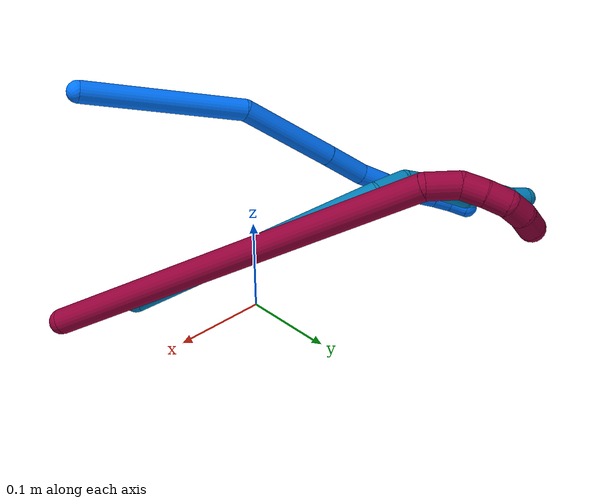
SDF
<sdf version="1.7">
 <world name="default">
  <model name="8">
   <static>0</static>
   <link name="8">
    <collision name="collision-cylinder-e_1_1_4">
     <pose>-0.034302 0.022058 0.188051 -0.116762 -0.179222 0.010503</pose>
     <geometry><cylinder><radius>0.0125</radius><length>0.384845</length></cylinder></geometry>
     <surface>
      <friction><ode><mu>1.16</mu><mu2>1.16</mu2><slip1>0</slip1><slip2>0</slip2></ode></friction>
      <contact><ode><kp>1e+06</kp><kd>1</kd><max_vel>0</max_vel><min_depth>0.001</min_depth></ode></contact>
     </surface>
    </collision>
    <visual name="visual-cylinder-e_1_1_4">
     <pose>-0.034302 0.022058 0.188051 -0.116762 -0.179222 0.010503</pose>
     <geometry><cylinder><radius>0.0125</radius><length>0.384845</length></cylinder></geometry>
     <material><ambient>0.584314 0 0.227451 1</ambient></material>
    </visual>
    <collision name="collision-cylinder-e_2_4_5">
     <pose>-0.07004 0.038054 0.390578 0.396533 -0.091213 -0.018338</pose>
     <geometry><cylinder><radius>0.0125</radius><length>0.031518</length></cylinder></geometry>
     <surface>
      <friction><ode><mu>1.16</mu><mu2>1.16</mu2><slip1>0</slip1><slip2>0</slip2></ode></friction>
      <contact><ode><kp>1e+06</kp><kd>1</kd><max_vel>0</max_vel><min_depth>0.001</min_depth></ode></contact>
     </surface>
    </collision>
    <visual name="visual-cylinder-e_2_4_5">
     <pose>-0.07004 0.038054 0.390578 0.396533 -0.091213 -0.018338</pose>
     <geometry><cylinder><radius>0.0125</radius><length>0.031518</length></cylinder></geometry>
     <material><ambient>0.584314 0 0.227451 1</ambient></material>
    </visual>
    <collision name="collision-cylinder-e_3_5_6">
     <pose>-0.075758 0.025932 0.413208 0.639236 -0.39895 -0.133619</pose>
     <geometry><cylinder><radius>0.0125</radius><length>0.022051</length></cylinder></geometry>
     <surface>
      <friction><ode><mu>1.16</mu><mu2>1.16</mu2><slip1>0</slip1><slip2>0</slip2></ode></friction>
      <contact><ode><kp>1e+06</kp><kd>1</kd><max_vel>0</max_vel><min_depth>0.001</min_depth></ode></contact>
     </surface>
    </collision>
    <visual name="visual-cylinder-e_3_5_6">
     <pose>-0.075758 0.025932 0.413208 0.639236 -0.39895 -0.133619</pose>
     <geometry><cylinder><radius>0.0125</radius><length>0.022051</length></cylinder></geometry>
     <material><ambient>0.584314 0 0.227451 1</ambient></material>
    </visual>
    <collision name="collision-cylinder-e_4_6_7">
     <pose>-0.083855 0.013063 0.428395 0.76902 -0.371591 -0.151827</pose>
     <geometry><cylinder><radius>0.0125</radius><length>0.021011</length></cylinder></geometry>
     <surface>
      <friction><ode><mu>1.16</mu><mu2>1.16</mu2><slip1>0</slip1><slip2>0</slip2></ode></friction>
      <contact><ode><kp>1e+06</kp><kd>1</kd><max_vel>0</max_vel><min_depth>0.001</min_depth></ode></contact>
     </surface>
    </collision>
    <visual name="visual-cylinder-e_4_6_7">
     <pose>-0.083855 0.013063 0.428395 0.76902 -0.371591 -0.151827</pose>
     <geometry><cylinder><radius>0.0125</radius><length>0.021011</length></cylinder></geometry>
     <material><ambient>0.584314 0 0.227451 1</ambient></material>
    </visual>
    <collision name="collision-cylinder-e_5_7_8">
     <pose>-0.08846 -0.003026 0.439206 1.18441 -0.078718 -0.052973</pose>
     <geometry><cylinder><radius>0.0125</radius><length>0.020103</length></cylinder></geometry>
     <surface>
      <friction><ode><mu>1.16</mu><mu2>1.16</mu2><slip1>0</slip1><slip2>0</slip2></ode></friction>
      <contact><ode><kp>1e+06</kp><kd>1</kd><max_vel>0</max_vel><min_depth>0.001</min_depth></ode></contact>
     </surface>
    </collision>
    <visual name="visual-cylinder-e_5_7_8">
     <pose>-0.08846 -0.003026 0.439206 1.18441 -0.078718 -0.052973</pose>
     <geometry><cylinder><radius>0.0125</radius><length>0.020103</length></cylinder></geometry>
     <material><ambient>0.584314 0 0.227451 1</ambient></material>
    </visual>
    <collision name="collision-cylinder-e_6_8_2">
     <pose>-0.088641 -0.022385 0.444665 1.40527 0.059572 0.050449</pose>
     <geometry><cylinder><radius>0.0125</radius><length>0.020472</length></cylinder></geometry>
     <surface>
      <friction><ode><mu>1.16</mu><mu2>1.16</mu2><slip1>0</slip1><slip2>0</slip2></ode></friction>
      <contact><ode><kp>1e+06</kp><kd>1</kd><max_vel>0</max_vel><min_depth>0.001</min_depth></ode></contact>
     </surface>
    </collision>
    <visual name="visual-cylinder-e_6_8_2">
     <pose>-0.088641 -0.022385 0.444665 1.40527 0.059572 0.050449</pose>
     <geometry><cylinder><radius>0.0125</radius><length>0.020472</length></cylinder></geometry>
     <material><ambient>0.584314 0 0.227451 1</ambient></material>
    </visual>
    <collision name="collision-sphere-2">
     <pose>-0.088032 -0.032463 0.446349 0 -0 0</pose>
     <geometry><sphere><radius>0.0125</radius></sphere></geometry>
     <surface>
      <friction><ode><mu>1.16</mu><mu2>1.16</mu2><slip1>0</slip1><slip2>0</slip2></ode></friction>
      <contact><ode><kp>1e+06</kp><kd>1</kd><max_vel>0</max_vel><min_depth>0.001</min_depth></ode></contact>
     </surface>
    </collision>
    <visual name="visual-sphere-2">
     <pose>-0.088032 -0.032463 0.446349 0 -0 0</pose>
     <geometry><sphere><radius>0.0125</radius></sphere></geometry>
     <material><ambient>0.584314 0 0.227451 1</ambient></material>
    </visual>
    <collision name="collision-sphere-4">
     <pose>-0.068604 0.044115 0.376103 0 -0 0</pose>
     <geometry><sphere><radius>0.0125</radius></sphere></geometry>
     <surface>
      <friction><ode><mu>1.16</mu><mu2>1.16</mu2><slip1>0</slip1><slip2>0</slip2></ode></friction>
      <contact><ode><kp>1e+06</kp><kd>1</kd><max_vel>0</max_vel><min_depth>0.001</min_depth></ode></contact>
     </surface>
    </collision>
    <visual name="visual-sphere-4">
     <pose>-0.068604 0.044115 0.376103 0 -0 0</pose>
     <geometry><sphere><radius>0.0125</radius></sphere></geometry>
     <material><ambient>0.584314 0 0.227451 1</ambient></material>
    </visual>
    <collision name="collision-sphere-1">
     <geometry><sphere><radius>0.0125</radius></sphere></geometry>
     <surface>
      <friction><ode><mu>1.16</mu><mu2>1.16</mu2><slip1>0</slip1><slip2>0</slip2></ode></friction>
      <contact><ode><kp>1e+06</kp><kd>1</kd><max_vel>0</max_vel><min_depth>0.001</min_depth></ode></contact>
     </surface>
    </collision>
    <visual name="visual-sphere-1">
     <geometry><sphere><radius>0.0125</radius></sphere></geometry>
     <material><ambient>0.584314 0 0.227451 1</ambient></material>
    </visual>
    <collision name="collision-sphere-8">
     <pose>-0.089251 -0.012307 0.442982 0 -0 0</pose>
     <geometry><sphere><radius>0.0125</radius></sphere></geometry>
     <surface>
      <friction><ode><mu>1.16</mu><mu2>1.16</mu2><slip1>0</slip1><slip2>0</slip2></ode></friction>
      <contact><ode><kp>1e+06</kp><kd>1</kd><max_vel>0</max_vel><min_depth>0.001</min_depth></ode></contact>
     </surface>
    </collision>
    <visual name="visual-sphere-8">
     <pose>-0.089251 -0.012307 0.442982 0 -0 0</pose>
     <geometry><sphere><radius>0.0125</radius></sphere></geometry>
     <material><ambient>0.584314 0 0.227451 1</ambient></material>
    </visual>
    <collision name="collision-sphere-5">
     <pose>-0.071475 0.031993 0.405054 0 -0 0</pose>
     <geometry><sphere><radius>0.0125</radius></sphere></geometry>
     <surface>
      <friction><ode><mu>1.16</mu><mu2>1.16</mu2><slip1>0</slip1><slip2>0</slip2></ode></friction>
      <contact><ode><kp>1e+06</kp><kd>1</kd><max_vel>0</max_vel><min_depth>0.001</min_depth></ode></contact>
     </surface>
    </collision>
    <visual name="visual-sphere-5">
     <pose>-0.071475 0.031993 0.405054 0 -0 0</pose>
     <geometry><sphere><radius>0.0125</radius></sphere></geometry>
     <material><ambient>0.584314 0 0.227451 1</ambient></material>
    </visual>
    <collision name="collision-sphere-6">
     <pose>-0.080041 0.019871 0.421361 0 -0 0</pose>
     <geometry><sphere><radius>0.0125</radius></sphere></geometry>
     <surface>
      <friction><ode><mu>1.16</mu><mu2>1.16</mu2><slip1>0</slip1><slip2>0</slip2></ode></friction>
      <contact><ode><kp>1e+06</kp><kd>1</kd><max_vel>0</max_vel><min_depth>0.001</min_depth></ode></contact>
     </surface>
    </collision>
    <visual name="visual-sphere-6">
     <pose>-0.080041 0.019871 0.421361 0 -0 0</pose>
     <geometry><sphere><radius>0.0125</radius></sphere></geometry>
     <material><ambient>0.584314 0 0.227451 1</ambient></material>
    </visual>
    <collision name="collision-sphere-7">
     <pose>-0.08767 0.006256 0.435429 0 -0 0</pose>
     <geometry><sphere><radius>0.0125</radius></sphere></geometry>
     <surface>
      <friction><ode><mu>1.16</mu><mu2>1.16</mu2><slip1>0</slip1><slip2>0</slip2></ode></friction>
      <contact><ode><kp>1e+06</kp><kd>1</kd><max_vel>0</max_vel><min_depth>0.001</min_depth></ode></contact>
     </surface>
    </collision>
    <visual name="visual-sphere-7">
     <pose>-0.08767 0.006256 0.435429 0 -0 0</pose>
     <geometry><sphere><radius>0.0125</radius></sphere></geometry>
     <material><ambient>0.584314 0 0.227451 1</ambient></material>
    </visual>
    <inertial>
     <pose>-0.044868 0.020031 0.241452 0 -0 0</pose>
     <mass>0.5</mass>
     <inertia>
      <ixx>0.00474</ixx>
      <ixy>0</ixy>
      <ixz>0</ixz>
      <iyy>0.004786</iyy>
      <iyz>0</iyz>
      <izz>0.000346</izz>
     </inertia>
    </inertial>
   </link>
   <pose>0.204482 -0.050295 0.053863 1.13984 -0.211706 -2.1832</pose>
  </model>
  <model name="9">
   <static>0</static>
   <link name="9">
    <collision name="collision-cylinder-e_1_1_4">
     <pose>-0.082476 0.067957 -0.093915 -2.51521 -0.618381 1.55706</pose>
     <geometry><cylinder><radius>0.0125</radius><length>0.284537</length></cylinder></geometry>
     <surface>
      <friction><ode><mu>1.16</mu><mu2>1.16</mu2><slip1>0</slip1><slip2>0</slip2></ode></friction>
      <contact><ode><kp>1e+06</kp><kd>1</kd><max_vel>0</max_vel><min_depth>0.001</min_depth></ode></contact>
     </surface>
    </collision>
    <visual name="visual-cylinder-e_1_1_4">
     <pose>-0.082476 0.067957 -0.093915 -2.51521 -0.618381 1.55706</pose>
     <geometry><cylinder><radius>0.0125</radius><length>0.284537</length></cylinder></geometry>
     <material><ambient>0 0.490196 0.709804 1</ambient></material>
    </visual>
    <collision name="collision-cylinder-e_2_4_5">
     <pose>-0.175362 0.15066 -0.19681 -2.11775 -0.542622 0.919384</pose>
     <geometry><cylinder><radius>0.0125</radius><length>0.040322</length></cylinder></geometry>
     <surface>
      <friction><ode><mu>1.16</mu><mu2>1.16</mu2><slip1>0</slip1><slip2>0</slip2></ode></friction>
      <contact><ode><kp>1e+06</kp><kd>1</kd><max_vel>0</max_vel><min_depth>0.001</min_depth></ode></contact>
     </surface>
    </collision>
    <visual name="visual-cylinder-e_2_4_5">
     <pose>-0.175362 0.15066 -0.19681 -2.11775 -0.542622 0.919384</pose>
     <geometry><cylinder><radius>0.0125</radius><length>0.040322</length></cylinder></geometry>
     <material><ambient>0 0.490196 0.709804 1</ambient></material>
    </visual>
    <collision name="collision-cylinder-e_3_5_6">
     <pose>-0.194869 0.172221 -0.206771 -1.71383 -0.922828 1.04209</pose>
     <geometry><cylinder><radius>0.0125</radius><length>0.022817</length></cylinder></geometry>
     <surface>
      <friction><ode><mu>1.16</mu><mu2>1.16</mu2><slip1>0</slip1><slip2>0</slip2></ode></friction>
      <contact><ode><kp>1e+06</kp><kd>1</kd><max_vel>0</max_vel><min_depth>0.001</min_depth></ode></contact>
     </surface>
    </collision>
    <visual name="visual-cylinder-e_3_5_6">
     <pose>-0.194869 0.172221 -0.206771 -1.71383 -0.922828 1.04209</pose>
     <geometry><cylinder><radius>0.0125</radius><length>0.022817</length></cylinder></geometry>
     <material><ambient>0 0.490196 0.709804 1</ambient></material>
    </visual>
    <collision name="collision-cylinder-e_4_6_7">
     <pose>-0.229806 0.200117 -0.206163 -1.49556 -0.885121 0.828233</pose>
     <geometry><cylinder><radius>0.0125</radius><length>0.066772</length></cylinder></geometry>
     <surface>
      <friction><ode><mu>1.16</mu><mu2>1.16</mu2><slip1>0</slip1><slip2>0</slip2></ode></friction>
      <contact><ode><kp>1e+06</kp><kd>1</kd><max_vel>0</max_vel><min_depth>0.001</min_depth></ode></contact>
     </surface>
    </collision>
    <visual name="visual-cylinder-e_4_6_7">
     <pose>-0.229806 0.200117 -0.206163 -1.49556 -0.885121 0.828233</pose>
     <geometry><cylinder><radius>0.0125</radius><length>0.066772</length></cylinder></geometry>
     <material><ambient>0 0.490196 0.709804 1</ambient></material>
    </visual>
    <collision name="collision-cylinder-e_5_7_8">
     <pose>-0.262864 0.227183 -0.208376 -2.13668 -0.794214 1.30382</pose>
     <geometry><cylinder><radius>0.0125</radius><length>0.020236</length></cylinder></geometry>
     <surface>
      <friction><ode><mu>1.16</mu><mu2>1.16</mu2><slip1>0</slip1><slip2>0</slip2></ode></friction>
      <contact><ode><kp>1e+06</kp><kd>1</kd><max_vel>0</max_vel><min_depth>0.001</min_depth></ode></contact>
     </surface>
    </collision>
    <visual name="visual-cylinder-e_5_7_8">
     <pose>-0.262864 0.227183 -0.208376 -2.13668 -0.794214 1.30382</pose>
     <geometry><cylinder><radius>0.0125</radius><length>0.020236</length></cylinder></geometry>
     <material><ambient>0 0.490196 0.709804 1</ambient></material>
    </visual>
    <collision name="collision-cylinder-e_6_8_9">
     <pose>-0.277889 0.241259 -0.214543 -1.85511 -0.747169 0.96366</pose>
     <geometry><cylinder><radius>0.0125</radius><length>0.022979</length></cylinder></geometry>
     <surface>
      <friction><ode><mu>1.16</mu><mu2>1.16</mu2><slip1>0</slip1><slip2>0</slip2></ode></friction>
      <contact><ode><kp>1e+06</kp><kd>1</kd><max_vel>0</max_vel><min_depth>0.001</min_depth></ode></contact>
     </surface>
    </collision>
    <visual name="visual-cylinder-e_6_8_9">
     <pose>-0.277889 0.241259 -0.214543 -1.85511 -0.747169 0.96366</pose>
     <geometry><cylinder><radius>0.0125</radius><length>0.022979</length></cylinder></geometry>
     <material><ambient>0 0.490196 0.709804 1</ambient></material>
    </visual>
    <collision name="collision-cylinder-e_7_9_10">
     <pose>-0.29441 0.255624 -0.216758 -1.54699 -0.946608 0.927426</pose>
     <geometry><cylinder><radius>0.0125</radius><length>0.021476</length></cylinder></geometry>
     <surface>
      <friction><ode><mu>1.16</mu><mu2>1.16</mu2><slip1>0</slip1><slip2>0</slip2></ode></friction>
      <contact><ode><kp>1e+06</kp><kd>1</kd><max_vel>0</max_vel><min_depth>0.001</min_depth></ode></contact>
     </surface>
    </collision>
    <visual name="visual-cylinder-e_7_9_10">
     <pose>-0.29441 0.255624 -0.216758 -1.54699 -0.946608 0.927426</pose>
     <geometry><cylinder><radius>0.0125</radius><length>0.021476</length></cylinder></geometry>
     <material><ambient>0 0.490196 0.709804 1</ambient></material>
    </visual>
    <collision name="collision-cylinder-e_8_10_2">
     <pose>-0.310679 0.268722 -0.218872 -1.89102 -0.810191 1.07198</pose>
     <geometry><cylinder><radius>0.0125</radius><length>0.02086</length></cylinder></geometry>
     <surface>
      <friction><ode><mu>1.16</mu><mu2>1.16</mu2><slip1>0</slip1><slip2>0</slip2></ode></friction>
      <contact><ode><kp>1e+06</kp><kd>1</kd><max_vel>0</max_vel><min_depth>0.001</min_depth></ode></contact>
     </surface>
    </collision>
    <visual name="visual-cylinder-e_8_10_2">
     <pose>-0.310679 0.268722 -0.218872 -1.89102 -0.810191 1.07198</pose>
     <geometry><cylinder><radius>0.0125</radius><length>0.02086</length></cylinder></geometry>
     <material><ambient>0 0.490196 0.709804 1</ambient></material>
    </visual>
    <collision name="collision-sphere-2">
     <pose>-0.318234 0.275547 -0.221135 0 -0 0</pose>
     <geometry><sphere><radius>0.0125</radius></sphere></geometry>
     <surface>
      <friction><ode><mu>1.16</mu><mu2>1.16</mu2><slip1>0</slip1><slip2>0</slip2></ode></friction>
      <contact><ode><kp>1e+06</kp><kd>1</kd><max_vel>0</max_vel><min_depth>0.001</min_depth></ode></contact>
     </surface>
    </collision>
    <visual name="visual-sphere-2">
     <pose>-0.318234 0.275547 -0.221135 0 -0 0</pose>
     <geometry><sphere><radius>0.0125</radius></sphere></geometry>
     <material><ambient>0 0.490196 0.709804 1</ambient></material>
    </visual>
    <collision name="collision-sphere-10">
     <pose>-0.303123 0.261898 -0.216608 0 -0 0</pose>
     <geometry><sphere><radius>0.0125</radius></sphere></geometry>
     <surface>
      <friction><ode><mu>1.16</mu><mu2>1.16</mu2><slip1>0</slip1><slip2>0</slip2></ode></friction>
      <contact><ode><kp>1e+06</kp><kd>1</kd><max_vel>0</max_vel><min_depth>0.001</min_depth></ode></contact>
     </surface>
    </collision>
    <visual name="visual-sphere-10">
     <pose>-0.303123 0.261898 -0.216608 0 -0 0</pose>
     <geometry><sphere><radius>0.0125</radius></sphere></geometry>
     <material><ambient>0 0.490196 0.709804 1</ambient></material>
    </visual>
    <collision name="collision-sphere-9">
     <pose>-0.285697 0.24935 -0.216907 0 -0 0</pose>
     <geometry><sphere><radius>0.0125</radius></sphere></geometry>
     <surface>
      <friction><ode><mu>1.16</mu><mu2>1.16</mu2><slip1>0</slip1><slip2>0</slip2></ode></friction>
      <contact><ode><kp>1e+06</kp><kd>1</kd><max_vel>0</max_vel><min_depth>0.001</min_depth></ode></contact>
     </surface>
    </collision>
    <visual name="visual-sphere-9">
     <pose>-0.285697 0.24935 -0.216907 0 -0 0</pose>
     <geometry><sphere><radius>0.0125</radius></sphere></geometry>
     <material><ambient>0 0.490196 0.709804 1</ambient></material>
    </visual>
    <collision name="collision-sphere-4">
     <pose>-0.164951 0.135913 -0.18783 0 -0 0</pose>
     <geometry><sphere><radius>0.0125</radius></sphere></geometry>
     <surface>
      <friction><ode><mu>1.16</mu><mu2>1.16</mu2><slip1>0</slip1><slip2>0</slip2></ode></friction>
      <contact><ode><kp>1e+06</kp><kd>1</kd><max_vel>0</max_vel><min_depth>0.001</min_depth></ode></contact>
     </surface>
    </collision>
    <visual name="visual-sphere-4">
     <pose>-0.164951 0.135913 -0.18783 0 -0 0</pose>
     <geometry><sphere><radius>0.0125</radius></sphere></geometry>
     <material><ambient>0 0.490196 0.709804 1</ambient></material>
    </visual>
    <collision name="collision-sphere-1">
     <geometry><sphere><radius>0.0125</radius></sphere></geometry>
     <surface>
      <friction><ode><mu>1.16</mu><mu2>1.16</mu2><slip1>0</slip1><slip2>0</slip2></ode></friction>
      <contact><ode><kp>1e+06</kp><kd>1</kd><max_vel>0</max_vel><min_depth>0.001</min_depth></ode></contact>
     </surface>
    </collision>
    <visual name="visual-sphere-1">
     <geometry><sphere><radius>0.0125</radius></sphere></geometry>
     <material><ambient>0 0.490196 0.709804 1</ambient></material>
    </visual>
    <collision name="collision-sphere-8">
     <pose>-0.270081 0.233169 -0.212178 0 -0 0</pose>
     <geometry><sphere><radius>0.0125</radius></sphere></geometry>
     <surface>
      <friction><ode><mu>1.16</mu><mu2>1.16</mu2><slip1>0</slip1><slip2>0</slip2></ode></friction>
      <contact><ode><kp>1e+06</kp><kd>1</kd><max_vel>0</max_vel><min_depth>0.001</min_depth></ode></contact>
     </surface>
    </collision>
    <visual name="visual-sphere-8">
     <pose>-0.270081 0.233169 -0.212178 0 -0 0</pose>
     <geometry><sphere><radius>0.0125</radius></sphere></geometry>
     <material><ambient>0 0.490196 0.709804 1</ambient></material>
    </visual>
    <collision name="collision-sphere-5">
     <pose>-0.185773 0.165406 -0.205789 0 -0 0</pose>
     <geometry><sphere><radius>0.0125</radius></sphere></geometry>
     <surface>
      <friction><ode><mu>1.16</mu><mu2>1.16</mu2><slip1>0</slip1><slip2>0</slip2></ode></friction>
      <contact><ode><kp>1e+06</kp><kd>1</kd><max_vel>0</max_vel><min_depth>0.001</min_depth></ode></contact>
     </surface>
    </collision>
    <visual name="visual-sphere-5">
     <pose>-0.185773 0.165406 -0.205789 0 -0 0</pose>
     <geometry><sphere><radius>0.0125</radius></sphere></geometry>
     <material><ambient>0 0.490196 0.709804 1</ambient></material>
    </visual>
    <collision name="collision-sphere-6">
     <pose>-0.203965 0.179037 -0.207752 0 -0 0</pose>
     <geometry><sphere><radius>0.0125</radius></sphere></geometry>
     <surface>
      <friction><ode><mu>1.16</mu><mu2>1.16</mu2><slip1>0</slip1><slip2>0</slip2></ode></friction>
      <contact><ode><kp>1e+06</kp><kd>1</kd><max_vel>0</max_vel><min_depth>0.001</min_depth></ode></contact>
     </surface>
    </collision>
    <visual name="visual-sphere-6">
     <pose>-0.203965 0.179037 -0.207752 0 -0 0</pose>
     <geometry><sphere><radius>0.0125</radius></sphere></geometry>
     <material><ambient>0 0.490196 0.709804 1</ambient></material>
    </visual>
    <collision name="collision-sphere-7">
     <pose>-0.255646 0.221197 -0.204574 0 -0 0</pose>
     <geometry><sphere><radius>0.0125</radius></sphere></geometry>
     <surface>
      <friction><ode><mu>1.16</mu><mu2>1.16</mu2><slip1>0</slip1><slip2>0</slip2></ode></friction>
      <contact><ode><kp>1e+06</kp><kd>1</kd><max_vel>0</max_vel><min_depth>0.001</min_depth></ode></contact>
     </surface>
    </collision>
    <visual name="visual-sphere-7">
     <pose>-0.255646 0.221197 -0.204574 0 -0 0</pose>
     <geometry><sphere><radius>0.0125</radius></sphere></geometry>
     <material><ambient>0 0.490196 0.709804 1</ambient></material>
    </visual>
    <inertial>
     <pose>-0.149676 0.127879 -0.143019 0 -0 0</pose>
     <mass>0.5</mass>
     <inertia>
      <ixx>0.00161</ixx>
      <ixy>0</ixy>
      <ixz>0</ixz>
      <iyy>0.002273</iyy>
      <iyz>0</iyz>
      <izz>0.000183</izz>
     </inertia>
    </inertial>
   </link>
   <pose>0.097505 -0.081628 0.011495 -2.93064 -0.385768 -1.1197</pose>
  </model>
  <model name="14">
   <static>0</static>
   <link name="14">
    <collision name="collision-cylinder-e_1_1_4">
     <pose>-0.044315 0.027208 0.077607 -0.337196 -0.494249 0.085831</pose>
     <geometry><cylinder><radius>0.0125</radius><length>0.186835</length></cylinder></geometry>
     <surface>
      <friction><ode><mu>1.16</mu><mu2>1.16</mu2><slip1>0</slip1><slip2>0</slip2></ode></friction>
      <contact><ode><kp>1e+06</kp><kd>1</kd><max_vel>0</max_vel><min_depth>0.001</min_depth></ode></contact>
     </surface>
    </collision>
    <visual name="visual-cylinder-e_1_1_4">
     <pose>-0.044315 0.027208 0.077607 -0.337196 -0.494249 0.085831</pose>
     <geometry><cylinder><radius>0.0125</radius><length>0.186835</length></cylinder></geometry>
     <material><ambient>0 0.462745 1 1</ambient></material>
    </visual>
    <collision name="collision-cylinder-e_2_4_5">
     <pose>-0.134081 0.069785 0.190807 -0.407615 -0.864571 0.190142</pose>
     <geometry><cylinder><radius>0.0125</radius><length>0.119482</length></cylinder></geometry>
     <surface>
      <friction><ode><mu>1.16</mu><mu2>1.16</mu2><slip1>0</slip1><slip2>0</slip2></ode></friction>
      <contact><ode><kp>1e+06</kp><kd>1</kd><max_vel>0</max_vel><min_depth>0.001</min_depth></ode></contact>
     </surface>
    </collision>
    <visual name="visual-cylinder-e_2_4_5">
     <pose>-0.134081 0.069785 0.190807 -0.407615 -0.864571 0.190142</pose>
     <geometry><cylinder><radius>0.0125</radius><length>0.119482</length></cylinder></geometry>
     <material><ambient>0 0.462745 1 1</ambient></material>
    </visual>
    <collision name="collision-cylinder-e_3_5_6">
     <pose>-0.199192 0.091141 0.241487 -0.377778 -0.880611 0.179654</pose>
     <geometry><cylinder><radius>0.0125</radius><length>0.050988</length></cylinder></geometry>
     <surface>
      <friction><ode><mu>1.16</mu><mu2>1.16</mu2><slip1>0</slip1><slip2>0</slip2></ode></friction>
      <contact><ode><kp>1e+06</kp><kd>1</kd><max_vel>0</max_vel><min_depth>0.001</min_depth></ode></contact>
     </surface>
    </collision>
    <visual name="visual-cylinder-e_3_5_6">
     <pose>-0.199192 0.091141 0.241487 -0.377778 -0.880611 0.179654</pose>
     <geometry><cylinder><radius>0.0125</radius><length>0.050988</length></cylinder></geometry>
     <material><ambient>0 0.462745 1 1</ambient></material>
    </visual>
    <collision name="collision-cylinder-e_4_6_7">
     <pose>-0.230135 0.102338 0.267672 -0.438879 -0.743937 0.173585</pose>
     <geometry><cylinder><radius>0.0125</radius><length>0.033324</length></cylinder></geometry>
     <surface>
      <friction><ode><mu>1.16</mu><mu2>1.16</mu2><slip1>0</slip1><slip2>0</slip2></ode></friction>
      <contact><ode><kp>1e+06</kp><kd>1</kd><max_vel>0</max_vel><min_depth>0.001</min_depth></ode></contact>
     </surface>
    </collision>
    <visual name="visual-cylinder-e_4_6_7">
     <pose>-0.230135 0.102338 0.267672 -0.438879 -0.743937 0.173585</pose>
     <geometry><cylinder><radius>0.0125</radius><length>0.033324</length></cylinder></geometry>
     <material><ambient>0 0.462745 1 1</ambient></material>
    </visual>
    <collision name="collision-cylinder-e_5_7_8">
     <pose>-0.248657 0.111141 0.285815 -0.471721 -0.741224 0.186231</pose>
     <geometry><cylinder><radius>0.0125</radius><length>0.021442</length></cylinder></geometry>
     <surface>
      <friction><ode><mu>1.16</mu><mu2>1.16</mu2><slip1>0</slip1><slip2>0</slip2></ode></friction>
      <contact><ode><kp>1e+06</kp><kd>1</kd><max_vel>0</max_vel><min_depth>0.001</min_depth></ode></contact>
     </surface>
    </collision>
    <visual name="visual-cylinder-e_5_7_8">
     <pose>-0.248657 0.111141 0.285815 -0.471721 -0.741224 0.186231</pose>
     <geometry><cylinder><radius>0.0125</radius><length>0.021442</length></cylinder></geometry>
     <material><ambient>0 0.462745 1 1</ambient></material>
    </visual>
    <collision name="collision-cylinder-e_6_8_9">
     <pose>-0.261963 0.121506 0.301719 -0.65262 -0.498314 0.171788</pose>
     <geometry><cylinder><radius>0.0125</radius><length>0.02539</length></cylinder></geometry>
     <surface>
      <friction><ode><mu>1.16</mu><mu2>1.16</mu2><slip1>0</slip1><slip2>0</slip2></ode></friction>
      <contact><ode><kp>1e+06</kp><kd>1</kd><max_vel>0</max_vel><min_depth>0.001</min_depth></ode></contact>
     </surface>
    </collision>
    <visual name="visual-cylinder-e_6_8_9">
     <pose>-0.261963 0.121506 0.301719 -0.65262 -0.498314 0.171788</pose>
     <geometry><cylinder><radius>0.0125</radius><length>0.02539</length></cylinder></geometry>
     <material><ambient>0 0.462745 1 1</ambient></material>
    </visual>
    <collision name="collision-cylinder-e_7_9_10">
     <pose>-0.272628 0.134472 0.317888 -0.70298 -0.44739 0.166473</pose>
     <geometry><cylinder><radius>0.0125</radius><length>0.021255</length></cylinder></geometry>
     <surface>
      <friction><ode><mu>1.16</mu><mu2>1.16</mu2><slip1>0</slip1><slip2>0</slip2></ode></friction>
      <contact><ode><kp>1e+06</kp><kd>1</kd><max_vel>0</max_vel><min_depth>0.001</min_depth></ode></contact>
     </surface>
    </collision>
    <visual name="visual-cylinder-e_7_9_10">
     <pose>-0.272628 0.134472 0.317888 -0.70298 -0.44739 0.166473</pose>
     <geometry><cylinder><radius>0.0125</radius><length>0.021255</length></cylinder></geometry>
     <material><ambient>0 0.462745 1 1</ambient></material>
    </visual>
    <collision name="collision-cylinder-e_8_10_11">
     <pose>-0.282409 0.146435 0.332218 -0.687834 -0.518452 0.18939</pose>
     <geometry><cylinder><radius>0.0125</radius><length>0.020921</length></cylinder></geometry>
     <surface>
      <friction><ode><mu>1.16</mu><mu2>1.16</mu2><slip1>0</slip1><slip2>0</slip2></ode></friction>
      <contact><ode><kp>1e+06</kp><kd>1</kd><max_vel>0</max_vel><min_depth>0.001</min_depth></ode></contact>
     </surface>
    </collision>
    <visual name="visual-cylinder-e_8_10_11">
     <pose>-0.282409 0.146435 0.332218 -0.687834 -0.518452 0.18939</pose>
     <geometry><cylinder><radius>0.0125</radius><length>0.020921</length></cylinder></geometry>
     <material><ambient>0 0.462745 1 1</ambient></material>
    </visual>
    <collision name="collision-cylinder-e_9_11_2">
     <pose>-0.2925 0.159019 0.344994 -0.869525 -0.502897 0.237472</pose>
     <geometry><cylinder><radius>0.0125</radius><length>0.020364</length></cylinder></geometry>
     <surface>
      <friction><ode><mu>1.16</mu><mu2>1.16</mu2><slip1>0</slip1><slip2>0</slip2></ode></friction>
      <contact><ode><kp>1e+06</kp><kd>1</kd><max_vel>0</max_vel><min_depth>0.001</min_depth></ode></contact>
     </surface>
    </collision>
    <visual name="visual-cylinder-e_9_11_2">
     <pose>-0.2925 0.159019 0.344994 -0.869525 -0.502897 0.237472</pose>
     <geometry><cylinder><radius>0.0125</radius><length>0.020364</length></cylinder></geometry>
     <material><ambient>0 0.462745 1 1</ambient></material>
    </visual>
    <collision name="collision-sphere-2">
     <pose>-0.297407 0.165835 0.35075 0 -0 0</pose>
     <geometry><sphere><radius>0.0125</radius></sphere></geometry>
     <surface>
      <friction><ode><mu>1.16</mu><mu2>1.16</mu2><slip1>0</slip1><slip2>0</slip2></ode></friction>
      <contact><ode><kp>1e+06</kp><kd>1</kd><max_vel>0</max_vel><min_depth>0.001</min_depth></ode></contact>
     </surface>
    </collision>
    <visual name="visual-sphere-2">
     <pose>-0.297407 0.165835 0.35075 0 -0 0</pose>
     <geometry><sphere><radius>0.0125</radius></sphere></geometry>
     <material><ambient>0 0.462745 1 1</ambient></material>
    </visual>
    <collision name="collision-sphere-11">
     <pose>-0.287592 0.152203 0.339238 0 -0 0</pose>
     <geometry><sphere><radius>0.0125</radius></sphere></geometry>
     <surface>
      <friction><ode><mu>1.16</mu><mu2>1.16</mu2><slip1>0</slip1><slip2>0</slip2></ode></friction>
      <contact><ode><kp>1e+06</kp><kd>1</kd><max_vel>0</max_vel><min_depth>0.001</min_depth></ode></contact>
     </surface>
    </collision>
    <visual name="visual-sphere-11">
     <pose>-0.287592 0.152203 0.339238 0 -0 0</pose>
     <geometry><sphere><radius>0.0125</radius></sphere></geometry>
     <material><ambient>0 0.462745 1 1</ambient></material>
    </visual>
    <collision name="collision-sphere-10">
     <pose>-0.277225 0.140667 0.325198 0 -0 0</pose>
     <geometry><sphere><radius>0.0125</radius></sphere></geometry>
     <surface>
      <friction><ode><mu>1.16</mu><mu2>1.16</mu2><slip1>0</slip1><slip2>0</slip2></ode></friction>
      <contact><ode><kp>1e+06</kp><kd>1</kd><max_vel>0</max_vel><min_depth>0.001</min_depth></ode></contact>
     </surface>
    </collision>
    <visual name="visual-sphere-10">
     <pose>-0.277225 0.140667 0.325198 0 -0 0</pose>
     <geometry><sphere><radius>0.0125</radius></sphere></geometry>
     <material><ambient>0 0.462745 1 1</ambient></material>
    </visual>
    <collision name="collision-sphere-9">
     <pose>-0.26803 0.128278 0.310579 0 -0 0</pose>
     <geometry><sphere><radius>0.0125</radius></sphere></geometry>
     <surface>
      <friction><ode><mu>1.16</mu><mu2>1.16</mu2><slip1>0</slip1><slip2>0</slip2></ode></friction>
      <contact><ode><kp>1e+06</kp><kd>1</kd><max_vel>0</max_vel><min_depth>0.001</min_depth></ode></contact>
     </surface>
    </collision>
    <visual name="visual-sphere-9">
     <pose>-0.26803 0.128278 0.310579 0 -0 0</pose>
     <geometry><sphere><radius>0.0125</radius></sphere></geometry>
     <material><ambient>0 0.462745 1 1</ambient></material>
    </visual>
    <collision name="collision-sphere-4">
     <pose>-0.088629 0.054416 0.155213 0 -0 0</pose>
     <geometry><sphere><radius>0.0125</radius></sphere></geometry>
     <surface>
      <friction><ode><mu>1.16</mu><mu2>1.16</mu2><slip1>0</slip1><slip2>0</slip2></ode></friction>
      <contact><ode><kp>1e+06</kp><kd>1</kd><max_vel>0</max_vel><min_depth>0.001</min_depth></ode></contact>
     </surface>
    </collision>
    <visual name="visual-sphere-4">
     <pose>-0.088629 0.054416 0.155213 0 -0 0</pose>
     <geometry><sphere><radius>0.0125</radius></sphere></geometry>
     <material><ambient>0 0.462745 1 1</ambient></material>
    </visual>
    <collision name="collision-sphere-1">
     <geometry><sphere><radius>0.0125</radius></sphere></geometry>
     <surface>
      <friction><ode><mu>1.16</mu><mu2>1.16</mu2><slip1>0</slip1><slip2>0</slip2></ode></friction>
      <contact><ode><kp>1e+06</kp><kd>1</kd><max_vel>0</max_vel><min_depth>0.001</min_depth></ode></contact>
     </surface>
    </collision>
    <visual name="visual-sphere-1">
     <geometry><sphere><radius>0.0125</radius></sphere></geometry>
     <material><ambient>0 0.462745 1 1</ambient></material>
    </visual>
    <collision name="collision-sphere-8">
     <pose>-0.255895 0.114735 0.29286 0 -0 0</pose>
     <geometry><sphere><radius>0.0125</radius></sphere></geometry>
     <surface>
      <friction><ode><mu>1.16</mu><mu2>1.16</mu2><slip1>0</slip1><slip2>0</slip2></ode></friction>
      <contact><ode><kp>1e+06</kp><kd>1</kd><max_vel>0</max_vel><min_depth>0.001</min_depth></ode></contact>
     </surface>
    </collision>
    <visual name="visual-sphere-8">
     <pose>-0.255895 0.114735 0.29286 0 -0 0</pose>
     <geometry><sphere><radius>0.0125</radius></sphere></geometry>
     <material><ambient>0 0.462745 1 1</ambient></material>
    </visual>
    <collision name="collision-sphere-5">
     <pose>-0.179533 0.085154 0.226401 0 -0 0</pose>
     <geometry><sphere><radius>0.0125</radius></sphere></geometry>
     <surface>
      <friction><ode><mu>1.16</mu><mu2>1.16</mu2><slip1>0</slip1><slip2>0</slip2></ode></friction>
      <contact><ode><kp>1e+06</kp><kd>1</kd><max_vel>0</max_vel><min_depth>0.001</min_depth></ode></contact>
     </surface>
    </collision>
    <visual name="visual-sphere-5">
     <pose>-0.179533 0.085154 0.226401 0 -0 0</pose>
     <geometry><sphere><radius>0.0125</radius></sphere></geometry>
     <material><ambient>0 0.462745 1 1</ambient></material>
    </visual>
    <collision name="collision-sphere-6">
     <pose>-0.218851 0.097128 0.256574 0 -0 0</pose>
     <geometry><sphere><radius>0.0125</radius></sphere></geometry>
     <surface>
      <friction><ode><mu>1.16</mu><mu2>1.16</mu2><slip1>0</slip1><slip2>0</slip2></ode></friction>
      <contact><ode><kp>1e+06</kp><kd>1</kd><max_vel>0</max_vel><min_depth>0.001</min_depth></ode></contact>
     </surface>
    </collision>
    <visual name="visual-sphere-6">
     <pose>-0.218851 0.097128 0.256574 0 -0 0</pose>
     <geometry><sphere><radius>0.0125</radius></sphere></geometry>
     <material><ambient>0 0.462745 1 1</ambient></material>
    </visual>
    <collision name="collision-sphere-7">
     <pose>-0.241418 0.107547 0.27877 0 -0 0</pose>
     <geometry><sphere><radius>0.0125</radius></sphere></geometry>
     <surface>
      <friction><ode><mu>1.16</mu><mu2>1.16</mu2><slip1>0</slip1><slip2>0</slip2></ode></friction>
      <contact><ode><kp>1e+06</kp><kd>1</kd><max_vel>0</max_vel><min_depth>0.001</min_depth></ode></contact>
     </surface>
    </collision>
    <visual name="visual-sphere-7">
     <pose>-0.241418 0.107547 0.27877 0 -0 0</pose>
     <geometry><sphere><radius>0.0125</radius></sphere></geometry>
     <material><ambient>0 0.462745 1 1</ambient></material>
    </visual>
    <inertial>
     <pose>-0.143535 0.072214 0.186103 0 -0 0</pose>
     <mass>0.5</mass>
     <inertia>
      <ixx>0.000635</ixx>
      <ixy>0</ixy>
      <ixz>0</ixz>
      <iyy>0.000766</iyy>
      <iyz>0</iyz>
      <izz>0.000211</izz>
     </inertia>
    </inertial>
   </link>
   <pose>0.068723 -0.197548 0.207864 0.301036 -1.32781 -0.426626</pose>
  </model>
 </world>
</sdf>
